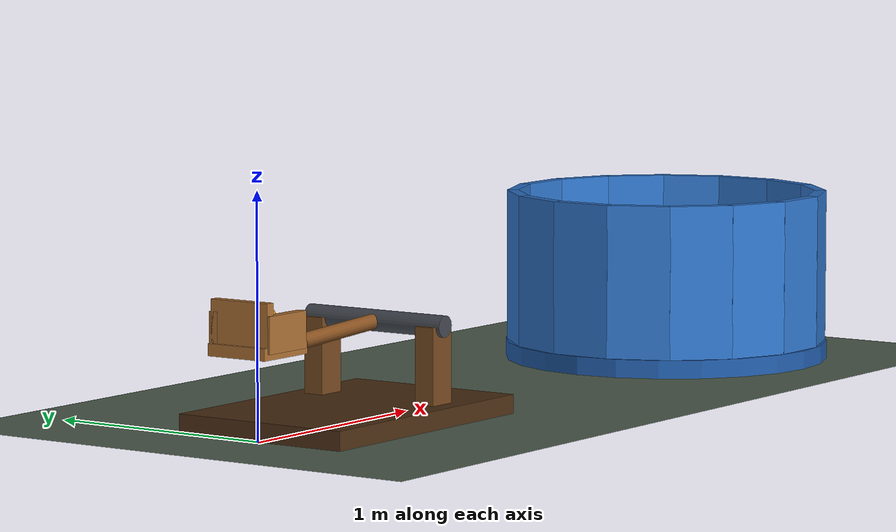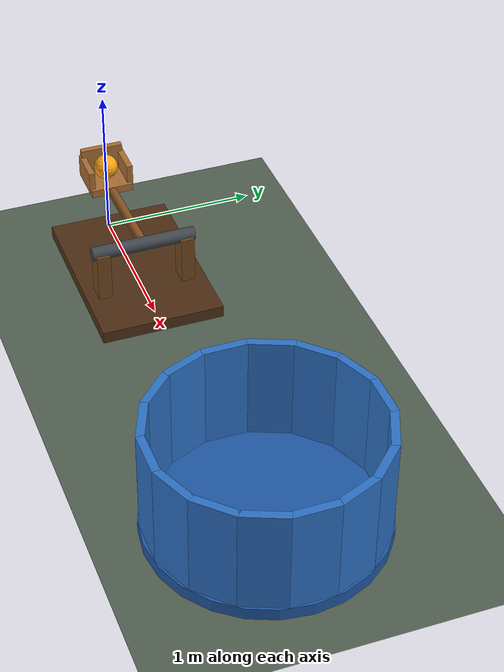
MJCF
<mujoco model="catapult_into_bucket">
  <compiler angle="degree" autolimits="true"/>
  <option timestep="0.002" gravity="0 0 -9.81" integrator="implicitfast" solver="Newton" iterations="80" tolerance="1e-10"/>
  <visual>
    <headlight ambient="0.35 0.35 0.35" diffuse="0.65 0.65 0.65" specular="0.2 0.2 0.2"/>
  </visual>

  <worldbody>
    <light name="main_light" pos="1 -3 5" dir="0 0.4 -1" diffuse="0.8 0.8 0.8"/>
    <camera name="overview" pos="1.5 -5 3" xyaxes="1 0 0 0 0.447214 0.894427"/>
    <geom name="floor" type="plane" pos="0 0 0" size="6 4 0.1" friction="0.8 0.01 0.001" rgba="0.32 0.38 0.32 1"/>

    <!-- The powered throwing arm accelerates upward, then stops at 45 degrees. -->
    <body name="catapult" pos="0.8 0 0.4">
      <geom name="catapult_base" type="box" pos="-0.2 0 -0.36" size="0.6 0.4 0.04" rgba="0.30 0.18 0.08 1"/>
      <geom name="catapult_left_support" type="box" pos="0 0.28 -0.18" size="0.065 0.045 0.18" rgba="0.45 0.28 0.12 1"/>
      <geom name="catapult_right_support" type="box" pos="0 -0.28 -0.18" size="0.065 0.045 0.18" rgba="0.45 0.28 0.12 1"/>
      <geom name="catapult_axle" type="cylinder" fromto="0 -0.34 0 0 0.34 0" size="0.045" contype="0" conaffinity="0" rgba="0.25 0.27 0.30 1"/>

      <body name="catapult_arm" pos="0 0 0">
        <inertial pos="-0.4 0 0" mass="0.4" diaginertia="0.002 0.024 0.024"/>
        <joint name="catapult_hinge" type="hinge" axis="0 1 0" range="0 45" damping="0.01" solreflimit="0.004 1" solimplimit="0.99 0.999 0.0005"/>
        <geom name="catapult_arm_beam" type="capsule" fromto="0 0 0 -0.8 0 -0.045" size="0.032" mass="0" friction="0.005 0.001 0.0001" rgba="0.55 0.33 0.13 1"/>
        <geom name="catapult_launch_paddle" type="box" pos="-0.8 0 -0.025" size="0.14 0.14 0.025" mass="0" friction="0.005 0.001 0.0001" solref="0.004 1" solimp="0.99 0.999 0.0005" rgba="0.66 0.43 0.20 1"/>
        <geom name="catapult_cup_outer_wall" type="box" pos="-0.90 0 0.075" size="0.02 0.14 0.10" mass="0" friction="0.005 0.001 0.0001" solref="0.004 1" solimp="0.99 0.999 0.0005" rgba="0.66 0.43 0.20 1"/>
        <geom name="catapult_cup_left_wall" type="box" pos="-0.8 0.13 0.05" size="0.12 0.02 0.075" mass="0" friction="0.005 0.001 0.0001" solref="0.004 1" solimp="0.99 0.999 0.0005" rgba="0.66 0.43 0.20 1"/>
        <geom name="catapult_cup_right_wall" type="box" pos="-0.8 -0.13 0.05" size="0.12 0.02 0.075" mass="0" friction="0.005 0.001 0.0001" solref="0.004 1" solimp="0.99 0.999 0.0005" rgba="0.66 0.43 0.20 1"/>
      </body>
    </body>

    <body name="ball" pos="0 0 0.48">
      <freejoint name="ball_free"/>
      <geom name="ball" type="sphere" size="0.08" mass="0.08" friction="0.005 0.001 0.0001" solref="0.008 1" solimp="0.99 0.999 0.0005" rgba="1 0.65 0.08 1"/>
    </body>

    <!-- Open bucket centered 3 m from the ball's initial position. -->
    <body name="bucket" pos="3 0 0">
      <geom name="bucket_bottom" type="cylinder" pos="0 0 0.04" size="0.72 0.04" friction="0.9 0.01 0.001" solref="0.008 1" solimp="0.99 0.999 0.0005" rgba="0.12 0.35 0.65 1"/>
      <geom name="bucket_wall_00" type="box" pos="0.675 0 0.4" euler="0 0 0" size="0.025 0.14 0.35" friction="0.9 0.01 0.001" solref="0.008 1" rgba="0.18 0.45 0.78 1"/>
      <geom name="bucket_wall_01" type="box" pos="0.623619 0.258311 0.4" euler="0 0 22.5" size="0.025 0.14 0.35" friction="0.9 0.01 0.001" solref="0.008 1" rgba="0.18 0.45 0.78 1"/>
      <geom name="bucket_wall_02" type="box" pos="0.477297 0.477297 0.4" euler="0 0 45" size="0.025 0.14 0.35" friction="0.9 0.01 0.001" solref="0.008 1" rgba="0.18 0.45 0.78 1"/>
      <geom name="bucket_wall_03" type="box" pos="0.258311 0.623619 0.4" euler="0 0 67.5" size="0.025 0.14 0.35" friction="0.9 0.01 0.001" solref="0.008 1" rgba="0.18 0.45 0.78 1"/>
      <geom name="bucket_wall_04" type="box" pos="0 0.675 0.4" euler="0 0 90" size="0.025 0.14 0.35" friction="0.9 0.01 0.001" solref="0.008 1" rgba="0.18 0.45 0.78 1"/>
      <geom name="bucket_wall_05" type="box" pos="-0.258311 0.623619 0.4" euler="0 0 112.5" size="0.025 0.14 0.35" friction="0.9 0.01 0.001" solref="0.008 1" rgba="0.18 0.45 0.78 1"/>
      <geom name="bucket_wall_06" type="box" pos="-0.477297 0.477297 0.4" euler="0 0 135" size="0.025 0.14 0.35" friction="0.9 0.01 0.001" solref="0.008 1" rgba="0.18 0.45 0.78 1"/>
      <geom name="bucket_wall_07" type="box" pos="-0.623619 0.258311 0.4" euler="0 0 157.5" size="0.025 0.14 0.35" friction="0.9 0.01 0.001" solref="0.008 1" rgba="0.18 0.45 0.78 1"/>
      <geom name="bucket_wall_08" type="box" pos="-0.675 0 0.4" euler="0 0 180" size="0.025 0.14 0.35" friction="0.9 0.01 0.001" solref="0.008 1" rgba="0.18 0.45 0.78 1"/>
      <geom name="bucket_wall_09" type="box" pos="-0.623619 -0.258311 0.4" euler="0 0 202.5" size="0.025 0.14 0.35" friction="0.9 0.01 0.001" solref="0.008 1" rgba="0.18 0.45 0.78 1"/>
      <geom name="bucket_wall_10" type="box" pos="-0.477297 -0.477297 0.4" euler="0 0 225" size="0.025 0.14 0.35" friction="0.9 0.01 0.001" solref="0.008 1" rgba="0.18 0.45 0.78 1"/>
      <geom name="bucket_wall_11" type="box" pos="-0.258311 -0.623619 0.4" euler="0 0 247.5" size="0.025 0.14 0.35" friction="0.9 0.01 0.001" solref="0.008 1" rgba="0.18 0.45 0.78 1"/>
      <geom name="bucket_wall_12" type="box" pos="0 -0.675 0.4" euler="0 0 270" size="0.025 0.14 0.35" friction="0.9 0.01 0.001" solref="0.008 1" rgba="0.18 0.45 0.78 1"/>
      <geom name="bucket_wall_13" type="box" pos="0.258311 -0.623619 0.4" euler="0 0 292.5" size="0.025 0.14 0.35" friction="0.9 0.01 0.001" solref="0.008 1" rgba="0.18 0.45 0.78 1"/>
      <geom name="bucket_wall_14" type="box" pos="0.477297 -0.477297 0.4" euler="0 0 315" size="0.025 0.14 0.35" friction="0.9 0.01 0.001" solref="0.008 1" rgba="0.18 0.45 0.78 1"/>
      <geom name="bucket_wall_15" type="box" pos="0.623619 -0.258311 0.4" euler="0 0 337.5" size="0.025 0.14 0.35" friction="0.9 0.01 0.001" solref="0.008 1" rgba="0.18 0.45 0.78 1"/>
    </body>
  </worldbody>

  <actuator>
    <motor name="catapult_motor" joint="catapult_hinge" gear="1" ctrllimited="true" ctrlrange="0 6"/>
  </actuator>

  <keyframe>
    <key name="start" qpos="0 0 0 0.48 1 0 0 0" qvel="0 0 0 0 0 0 0" ctrl="5.2"/>
  </keyframe>
</mujoco>
